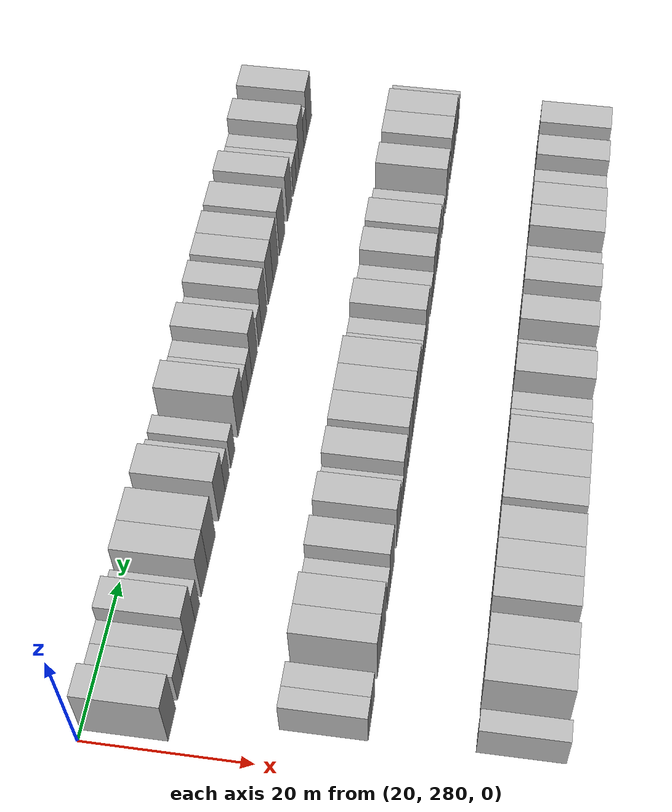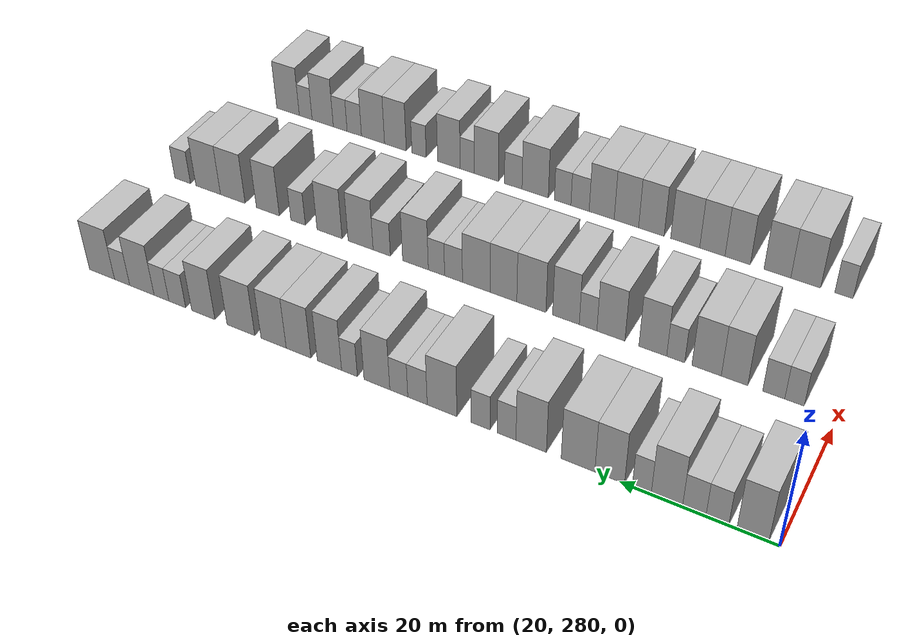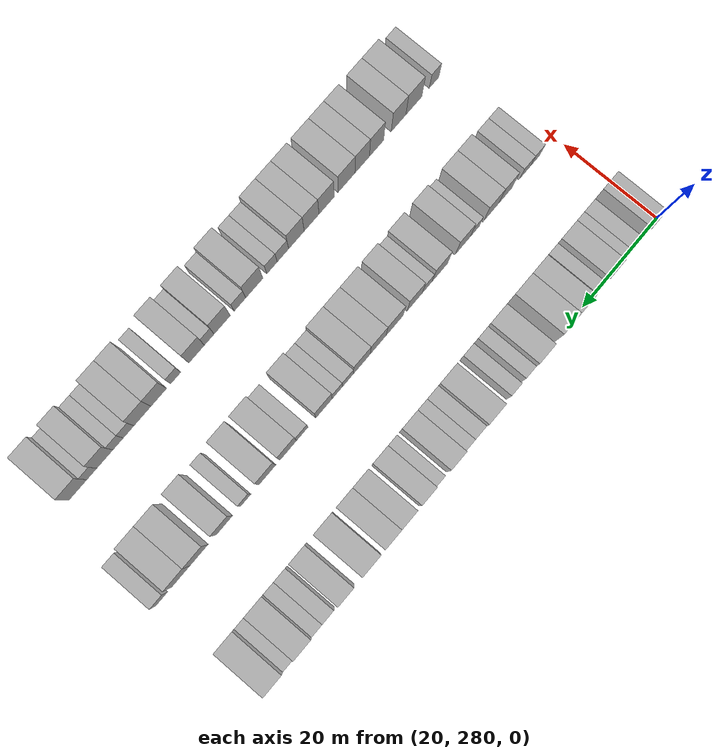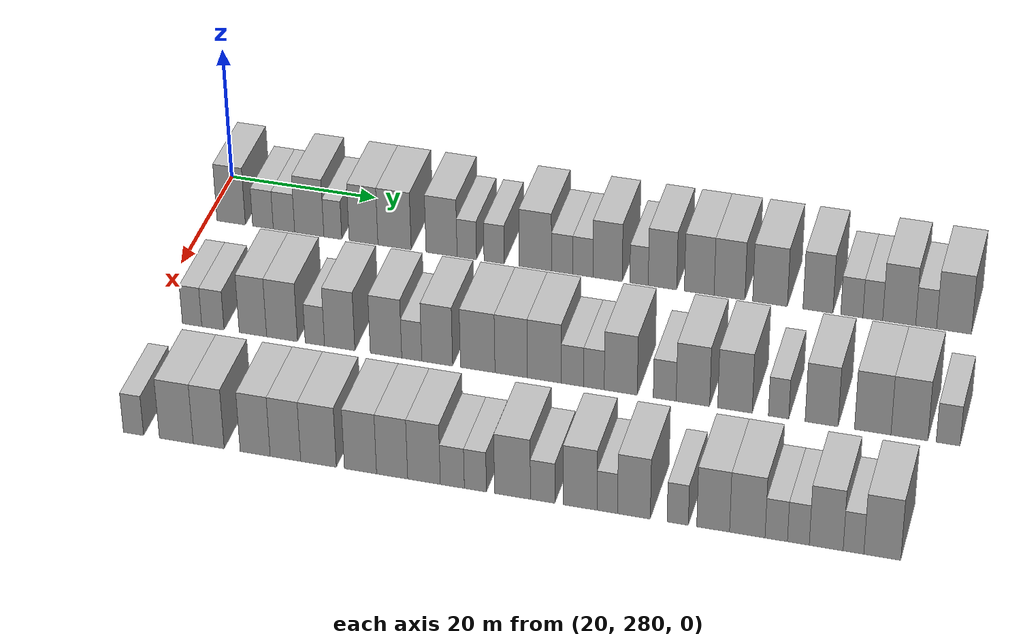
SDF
<sdf version="1.6">
 <world name="default">
  <model name="building_164">
   <static>1</static>
   <pose>25.0000 283.2691 0 0.000000 0.000000 0.000000</pose>
   <link name="link">
    <pose>0 0 4.50 0 0 0</pose>
    <collision name="collision"><geometry><box><size>10.0000 3.9026 9.0000</size></box></geometry></collision>
    <visual name="visual">
     <cast_shadows>0</cast_shadows>
     <geometry><box><size>10.0000 3.9026 9.0000</size></box></geometry>
     <material>
      <script>
       <uri>model://HANNAS_wall/materials/scripts</uri>
       <uri>model://HANNAS_wall/materials/textures</uri>
       <name>vrc/HANNAS_wall</name>
      </script>
     </material>
    </visual>
   </link>
  </model>
  <model name="building_165">
   <static>1</static>
   <pose>25.0000 287.6342 0 0.000000 0.000000 0.000000</pose>
   <link name="link">
    <pose>0 0 3.00 0 0 0</pose>
    <collision name="collision"><geometry><box><size>10.0000 2.8275 6.0000</size></box></geometry></collision>
    <visual name="visual">
     <cast_shadows>0</cast_shadows>
     <geometry><box><size>10.0000 2.8275 6.0000</size></box></geometry>
     <material>
      <script>
       <uri>model://HANNAS_wall/materials/scripts</uri>
       <uri>model://HANNAS_wall/materials/textures</uri>
       <name>vrc/HANNAS_wall</name>
      </script>
     </material>
    </visual>
   </link>
  </model>
  <model name="building_166">
   <static>1</static>
   <pose>25.0000 290.5154 0 0.000000 0.000000 0.000000</pose>
   <link name="link">
    <pose>0 0 3.00 0 0 0</pose>
    <collision name="collision"><geometry><box><size>10.0000 2.9350 6.0000</size></box></geometry></collision>
    <visual name="visual">
     <cast_shadows>0</cast_shadows>
     <geometry><box><size>10.0000 2.9350 6.0000</size></box></geometry>
     <material>
      <script>
       <uri>model://HANNAS_wall/materials/scripts</uri>
       <uri>model://HANNAS_wall/materials/textures</uri>
       <name>vrc/HANNAS_wall</name>
      </script>
     </material>
    </visual>
   </link>
  </model>
  <model name="building_167">
   <static>1</static>
   <pose>25.0000 293.9731 0 0.000000 0.000000 0.000000</pose>
   <link name="link">
    <pose>0 0 4.50 0 0 0</pose>
    <collision name="collision"><geometry><box><size>10.0000 3.9804 9.0000</size></box></geometry></collision>
    <visual name="visual">
     <cast_shadows>0</cast_shadows>
     <geometry><box><size>10.0000 3.9804 9.0000</size></box></geometry>
     <material>
      <script>
       <uri>model://HANNAS_wall/materials/scripts</uri>
       <uri>model://HANNAS_wall/materials/textures</uri>
       <name>vrc/HANNAS_wall</name>
      </script>
     </material>
    </visual>
   </link>
  </model>
  <model name="building_168">
   <static>1</static>
   <pose>25.0000 297.1837 0 0.000000 0.000000 0.000000</pose>
   <link name="link">
    <pose>0 0 3.00 0 0 0</pose>
    <collision name="collision"><geometry><box><size>10.0000 2.4409 6.0000</size></box></geometry></collision>
    <visual name="visual">
     <cast_shadows>0</cast_shadows>
     <geometry><box><size>10.0000 2.4409 6.0000</size></box></geometry>
     <material>
      <script>
       <uri>model://HANNAS_wall/materials/scripts</uri>
       <uri>model://HANNAS_wall/materials/textures</uri>
       <name>vrc/HANNAS_wall</name>
      </script>
     </material>
    </visual>
   </link>
  </model>
  <model name="building_169">
   <static>1</static>
   <pose>25.0000 301.3516 0 0.000000 0.000000 0.000000</pose>
   <link name="link">
    <pose>0 0 4.50 0 0 0</pose>
    <collision name="collision"><geometry><box><size>10.0000 3.8948 9.0000</size></box></geometry></collision>
    <visual name="visual">
     <cast_shadows>0</cast_shadows>
     <geometry><box><size>10.0000 3.8948 9.0000</size></box></geometry>
     <material>
      <script>
       <uri>model://HANNAS_wall/materials/scripts</uri>
       <uri>model://HANNAS_wall/materials/textures</uri>
       <name>vrc/HANNAS_wall</name>
      </script>
     </material>
    </visual>
   </link>
  </model>
  <model name="building_170">
   <static>1</static>
   <pose>25.0000 305.5456 0 0.000000 0.000000 0.000000</pose>
   <link name="link">
    <pose>0 0 4.50 0 0 0</pose>
    <collision name="collision"><geometry><box><size>10.0000 4.4932 9.0000</size></box></geometry></collision>
    <visual name="visual">
     <cast_shadows>0</cast_shadows>
     <geometry><box><size>10.0000 4.4932 9.0000</size></box></geometry>
     <material>
      <script>
       <uri>model://HANNAS_wall/materials/scripts</uri>
       <uri>model://HANNAS_wall/materials/textures</uri>
       <name>vrc/HANNAS_wall</name>
      </script>
     </material>
    </visual>
   </link>
  </model>
  <model name="building_171">
   <static>1</static>
   <pose>25.0000 311.8754 0 0.000000 0.000000 0.000000</pose>
   <link name="link">
    <pose>0 0 4.50 0 0 0</pose>
    <collision name="collision"><geometry><box><size>10.0000 4.1664 9.0000</size></box></geometry></collision>
    <visual name="visual">
     <cast_shadows>0</cast_shadows>
     <geometry><box><size>10.0000 4.1664 9.0000</size></box></geometry>
     <material>
      <script>
       <uri>model://HANNAS_wall/materials/scripts</uri>
       <uri>model://HANNAS_wall/materials/textures</uri>
       <name>vrc/HANNAS_wall</name>
      </script>
     </material>
    </visual>
   </link>
  </model>
  <model name="building_172">
   <static>1</static>
   <pose>25.0000 315.2566 0 0.000000 0.000000 0.000000</pose>
   <link name="link">
    <pose>0 0 3.00 0 0 0</pose>
    <collision name="collision"><geometry><box><size>10.0000 2.5960 6.0000</size></box></geometry></collision>
    <visual name="visual">
     <cast_shadows>0</cast_shadows>
     <geometry><box><size>10.0000 2.5960 6.0000</size></box></geometry>
     <material>
      <script>
       <uri>model://HANNAS_wall/materials/scripts</uri>
       <uri>model://HANNAS_wall/materials/textures</uri>
       <name>vrc/HANNAS_wall</name>
      </script>
     </material>
    </visual>
   </link>
  </model>
  <model name="building_173">
   <static>1</static>
   <pose>25.0000 318.8989 0 0.000000 0.000000 0.000000</pose>
   <link name="link">
    <pose>0 0 3.00 0 0 0</pose>
    <collision name="collision"><geometry><box><size>10.0000 2.6887 6.0000</size></box></geometry></collision>
    <visual name="visual">
     <cast_shadows>0</cast_shadows>
     <geometry><box><size>10.0000 2.6887 6.0000</size></box></geometry>
     <material>
      <script>
       <uri>model://HANNAS_wall/materials/scripts</uri>
       <uri>model://HANNAS_wall/materials/textures</uri>
       <name>vrc/HANNAS_wall</name>
      </script>
     </material>
    </visual>
   </link>
  </model>
  <model name="building_174">
   <static>1</static>
   <pose>25.0000 324.3795 0 0.000000 0.000000 0.000000</pose>
   <link name="link">
    <pose>0 0 4.50 0 0 0</pose>
    <collision name="collision"><geometry><box><size>10.0000 4.2726 9.0000</size></box></geometry></collision>
    <visual name="visual">
     <cast_shadows>0</cast_shadows>
     <geometry><box><size>10.0000 4.2726 9.0000</size></box></geometry>
     <material>
      <script>
       <uri>model://HANNAS_wall/materials/scripts</uri>
       <uri>model://HANNAS_wall/materials/textures</uri>
       <name>vrc/HANNAS_wall</name>
      </script>
     </material>
    </visual>
   </link>
  </model>
  <model name="building_175">
   <static>1</static>
   <pose>25.0000 327.9289 0 0.000000 0.000000 0.000000</pose>
   <link name="link">
    <pose>0 0 3.00 0 0 0</pose>
    <collision name="collision"><geometry><box><size>10.0000 2.8261 6.0000</size></box></geometry></collision>
    <visual name="visual">
     <cast_shadows>0</cast_shadows>
     <geometry><box><size>10.0000 2.8261 6.0000</size></box></geometry>
     <material>
      <script>
       <uri>model://HANNAS_wall/materials/scripts</uri>
       <uri>model://HANNAS_wall/materials/textures</uri>
       <name>vrc/HANNAS_wall</name>
      </script>
     </material>
    </visual>
   </link>
  </model>
  <model name="building_176">
   <static>1</static>
   <pose>25.0000 330.6680 0 0.000000 0.000000 0.000000</pose>
   <link name="link">
    <pose>0 0 3.00 0 0 0</pose>
    <collision name="collision"><geometry><box><size>10.0000 2.6521 6.0000</size></box></geometry></collision>
    <visual name="visual">
     <cast_shadows>0</cast_shadows>
     <geometry><box><size>10.0000 2.6521 6.0000</size></box></geometry>
     <material>
      <script>
       <uri>model://HANNAS_wall/materials/scripts</uri>
       <uri>model://HANNAS_wall/materials/textures</uri>
       <name>vrc/HANNAS_wall</name>
      </script>
     </material>
    </visual>
   </link>
  </model>
  <model name="building_177">
   <static>1</static>
   <pose>25.0000 333.9187 0 0.000000 0.000000 0.000000</pose>
   <link name="link">
    <pose>0 0 4.50 0 0 0</pose>
    <collision name="collision"><geometry><box><size>10.0000 3.8493 9.0000</size></box></geometry></collision>
    <visual name="visual">
     <cast_shadows>0</cast_shadows>
     <geometry><box><size>10.0000 3.8493 9.0000</size></box></geometry>
     <material>
      <script>
       <uri>model://HANNAS_wall/materials/scripts</uri>
       <uri>model://HANNAS_wall/materials/textures</uri>
       <name>vrc/HANNAS_wall</name>
      </script>
     </material>
    </visual>
   </link>
  </model>
  <model name="building_178">
   <static>1</static>
   <pose>25.0000 338.0436 0 0.000000 0.000000 0.000000</pose>
   <link name="link">
    <pose>0 0 3.00 0 0 0</pose>
    <collision name="collision"><geometry><box><size>10.0000 2.4005 6.0000</size></box></geometry></collision>
    <visual name="visual">
     <cast_shadows>0</cast_shadows>
     <geometry><box><size>10.0000 2.4005 6.0000</size></box></geometry>
     <material>
      <script>
       <uri>model://HANNAS_wall/materials/scripts</uri>
       <uri>model://HANNAS_wall/materials/textures</uri>
       <name>vrc/HANNAS_wall</name>
      </script>
     </material>
    </visual>
   </link>
  </model>
  <model name="building_179">
   <static>1</static>
   <pose>25.0000 341.1020 0 0.000000 0.000000 0.000000</pose>
   <link name="link">
    <pose>0 0 4.50 0 0 0</pose>
    <collision name="collision"><geometry><box><size>10.0000 3.7163 9.0000</size></box></geometry></collision>
    <visual name="visual">
     <cast_shadows>0</cast_shadows>
     <geometry><box><size>10.0000 3.7163 9.0000</size></box></geometry>
     <material>
      <script>
       <uri>model://HANNAS_wall/materials/scripts</uri>
       <uri>model://HANNAS_wall/materials/textures</uri>
       <name>vrc/HANNAS_wall</name>
      </script>
     </material>
    </visual>
   </link>
  </model>
  <model name="building_180">
   <static>1</static>
   <pose>25.0000 345.8897 0 0.000000 0.000000 0.000000</pose>
   <link name="link">
    <pose>0 0 4.50 0 0 0</pose>
    <collision name="collision"><geometry><box><size>10.0000 3.8592 9.0000</size></box></geometry></collision>
    <visual name="visual">
     <cast_shadows>0</cast_shadows>
     <geometry><box><size>10.0000 3.8592 9.0000</size></box></geometry>
     <material>
      <script>
       <uri>model://HANNAS_wall/materials/scripts</uri>
       <uri>model://HANNAS_wall/materials/textures</uri>
       <name>vrc/HANNAS_wall</name>
      </script>
     </material>
    </visual>
   </link>
  </model>
  <model name="building_181">
   <static>1</static>
   <pose>25.0000 349.8152 0 0.000000 0.000000 0.000000</pose>
   <link name="link">
    <pose>0 0 4.50 0 0 0</pose>
    <collision name="collision"><geometry><box><size>10.0000 3.9918 9.0000</size></box></geometry></collision>
    <visual name="visual">
     <cast_shadows>0</cast_shadows>
     <geometry><box><size>10.0000 3.9918 9.0000</size></box></geometry>
     <material>
      <script>
       <uri>model://HANNAS_wall/materials/scripts</uri>
       <uri>model://HANNAS_wall/materials/textures</uri>
       <name>vrc/HANNAS_wall</name>
      </script>
     </material>
    </visual>
   </link>
  </model>
  <model name="building_182">
   <static>1</static>
   <pose>25.0000 355.0511 0 0.000000 0.000000 0.000000</pose>
   <link name="link">
    <pose>0 0 4.50 0 0 0</pose>
    <collision name="collision"><geometry><box><size>10.0000 4.4800 9.0000</size></box></geometry></collision>
    <visual name="visual">
     <cast_shadows>0</cast_shadows>
     <geometry><box><size>10.0000 4.4800 9.0000</size></box></geometry>
     <material>
      <script>
       <uri>model://HANNAS_wall/materials/scripts</uri>
       <uri>model://HANNAS_wall/materials/textures</uri>
       <name>vrc/HANNAS_wall</name>
      </script>
     </material>
    </visual>
   </link>
  </model>
  <model name="building_183">
   <static>1</static>
   <pose>25.0000 361.2094 0 0.000000 0.000000 0.000000</pose>
   <link name="link">
    <pose>0 0 4.50 0 0 0</pose>
    <collision name="collision"><geometry><box><size>10.0000 3.8364 9.0000</size></box></geometry></collision>
    <visual name="visual">
     <cast_shadows>0</cast_shadows>
     <geometry><box><size>10.0000 3.8364 9.0000</size></box></geometry>
     <material>
      <script>
       <uri>model://HANNAS_wall/materials/scripts</uri>
       <uri>model://HANNAS_wall/materials/textures</uri>
       <name>vrc/HANNAS_wall</name>
      </script>
     </material>
    </visual>
   </link>
  </model>
  <model name="building_184">
   <static>1</static>
   <pose>25.0000 365.5385 0 0.000000 0.000000 0.000000</pose>
   <link name="link">
    <pose>0 0 3.00 0 0 0</pose>
    <collision name="collision"><geometry><box><size>10.0000 2.8219 6.0000</size></box></geometry></collision>
    <visual name="visual">
     <cast_shadows>0</cast_shadows>
     <geometry><box><size>10.0000 2.8219 6.0000</size></box></geometry>
     <material>
      <script>
       <uri>model://HANNAS_wall/materials/scripts</uri>
       <uri>model://HANNAS_wall/materials/textures</uri>
       <name>vrc/HANNAS_wall</name>
      </script>
     </material>
    </visual>
   </link>
  </model>
  <model name="building_185">
   <static>1</static>
   <pose>25.0000 368.2086 0 0.000000 0.000000 0.000000</pose>
   <link name="link">
    <pose>0 0 3.00 0 0 0</pose>
    <collision name="collision"><geometry><box><size>10.0000 2.5183 6.0000</size></box></geometry></collision>
    <visual name="visual">
     <cast_shadows>0</cast_shadows>
     <geometry><box><size>10.0000 2.5183 6.0000</size></box></geometry>
     <material>
      <script>
       <uri>model://HANNAS_wall/materials/scripts</uri>
       <uri>model://HANNAS_wall/materials/textures</uri>
       <name>vrc/HANNAS_wall</name>
      </script>
     </material>
    </visual>
   </link>
  </model>
  <model name="building_186">
   <static>1</static>
   <pose>25.0000 371.5582 0 0.000000 0.000000 0.000000</pose>
   <link name="link">
    <pose>0 0 4.50 0 0 0</pose>
    <collision name="collision"><geometry><box><size>10.0000 4.1809 9.0000</size></box></geometry></collision>
    <visual name="visual">
     <cast_shadows>0</cast_shadows>
     <geometry><box><size>10.0000 4.1809 9.0000</size></box></geometry>
     <material>
      <script>
       <uri>model://HANNAS_wall/materials/scripts</uri>
       <uri>model://HANNAS_wall/materials/textures</uri>
       <name>vrc/HANNAS_wall</name>
      </script>
     </material>
    </visual>
   </link>
  </model>
  <model name="building_187">
   <static>1</static>
   <pose>25.0000 374.9747 0 0.000000 0.000000 0.000000</pose>
   <link name="link">
    <pose>0 0 3.00 0 0 0</pose>
    <collision name="collision"><geometry><box><size>10.0000 2.6520 6.0000</size></box></geometry></collision>
    <visual name="visual">
     <cast_shadows>0</cast_shadows>
     <geometry><box><size>10.0000 2.6520 6.0000</size></box></geometry>
     <material>
      <script>
       <uri>model://HANNAS_wall/materials/scripts</uri>
       <uri>model://HANNAS_wall/materials/textures</uri>
       <name>vrc/HANNAS_wall</name>
      </script>
     </material>
    </visual>
   </link>
  </model>
  <model name="building_188">
   <static>1</static>
   <pose>25.0000 378.4992 0 0.000000 0.000000 0.000000</pose>
   <link name="link">
    <pose>0 0 4.50 0 0 0</pose>
    <collision name="collision"><geometry><box><size>10.0000 4.3971 9.0000</size></box></geometry></collision>
    <visual name="visual">
     <cast_shadows>0</cast_shadows>
     <geometry><box><size>10.0000 4.3971 9.0000</size></box></geometry>
     <material>
      <script>
       <uri>model://HANNAS_wall/materials/scripts</uri>
       <uri>model://HANNAS_wall/materials/textures</uri>
       <name>vrc/HANNAS_wall</name>
      </script>
     </material>
    </visual>
   </link>
  </model>
  <model name="building_357">
   <static>1</static>
   <pose>47.0000 285.6091 0 0.000000 0.000000 0.000000</pose>
   <link name="link">
    <pose>0 0 3.00 0 0 0</pose>
    <collision name="collision"><geometry><box><size>10.0000 2.5618 6.0000</size></box></geometry></collision>
    <visual name="visual">
     <cast_shadows>0</cast_shadows>
     <geometry><box><size>10.0000 2.5618 6.0000</size></box></geometry>
     <material>
      <script>
       <uri>model://HANNAS_wall/materials/scripts</uri>
       <uri>model://HANNAS_wall/materials/textures</uri>
       <name>vrc/HANNAS_wall</name>
      </script>
     </material>
    </visual>
   </link>
  </model>
  <model name="building_358">
   <static>1</static>
   <pose>47.0000 288.3603 0 0.000000 0.000000 0.000000</pose>
   <link name="link">
    <pose>0 0 3.00 0 0 0</pose>
    <collision name="collision"><geometry><box><size>10.0000 2.9406 6.0000</size></box></geometry></collision>
    <visual name="visual">
     <cast_shadows>0</cast_shadows>
     <geometry><box><size>10.0000 2.9406 6.0000</size></box></geometry>
     <material>
      <script>
       <uri>model://HANNAS_wall/materials/scripts</uri>
       <uri>model://HANNAS_wall/materials/textures</uri>
       <name>vrc/HANNAS_wall</name>
      </script>
     </material>
    </visual>
   </link>
  </model>
  <model name="building_359">
   <static>1</static>
   <pose>47.0000 293.6311 0 0.000000 0.000000 0.000000</pose>
   <link name="link">
    <pose>0 0 4.50 0 0 0</pose>
    <collision name="collision"><geometry><box><size>10.0000 3.6010 9.0000</size></box></geometry></collision>
    <visual name="visual">
     <cast_shadows>0</cast_shadows>
     <geometry><box><size>10.0000 3.6010 9.0000</size></box></geometry>
     <material>
      <script>
       <uri>model://HANNAS_wall/materials/scripts</uri>
       <uri>model://HANNAS_wall/materials/textures</uri>
       <name>vrc/HANNAS_wall</name>
      </script>
     </material>
    </visual>
   </link>
  </model>
  <model name="building_360">
   <static>1</static>
   <pose>47.0000 297.4551 0 0.000000 0.000000 0.000000</pose>
   <link name="link">
    <pose>0 0 4.50 0 0 0</pose>
    <collision name="collision"><geometry><box><size>10.0000 4.0470 9.0000</size></box></geometry></collision>
    <visual name="visual">
     <cast_shadows>0</cast_shadows>
     <geometry><box><size>10.0000 4.0470 9.0000</size></box></geometry>
     <material>
      <script>
       <uri>model://HANNAS_wall/materials/scripts</uri>
       <uri>model://HANNAS_wall/materials/textures</uri>
       <name>vrc/HANNAS_wall</name>
      </script>
     </material>
    </visual>
   </link>
  </model>
  <model name="building_361">
   <static>1</static>
   <pose>47.0000 301.7408 0 0.000000 0.000000 0.000000</pose>
   <link name="link">
    <pose>0 0 3.00 0 0 0</pose>
    <collision name="collision"><geometry><box><size>10.0000 2.5244 6.0000</size></box></geometry></collision>
    <visual name="visual">
     <cast_shadows>0</cast_shadows>
     <geometry><box><size>10.0000 2.5244 6.0000</size></box></geometry>
     <material>
      <script>
       <uri>model://HANNAS_wall/materials/scripts</uri>
       <uri>model://HANNAS_wall/materials/textures</uri>
       <name>vrc/HANNAS_wall</name>
      </script>
     </material>
    </visual>
   </link>
  </model>
  <model name="building_362">
   <static>1</static>
   <pose>47.0000 304.9739 0 0.000000 0.000000 0.000000</pose>
   <link name="link">
    <pose>0 0 4.50 0 0 0</pose>
    <collision name="collision"><geometry><box><size>10.0000 3.9418 9.0000</size></box></geometry></collision>
    <visual name="visual">
     <cast_shadows>0</cast_shadows>
     <geometry><box><size>10.0000 3.9418 9.0000</size></box></geometry>
     <material>
      <script>
       <uri>model://HANNAS_wall/materials/scripts</uri>
       <uri>model://HANNAS_wall/materials/textures</uri>
       <name>vrc/HANNAS_wall</name>
      </script>
     </material>
    </visual>
   </link>
  </model>
  <model name="building_363">
   <static>1</static>
   <pose>47.0000 310.9781 0 0.000000 0.000000 0.000000</pose>
   <link name="link">
    <pose>0 0 4.50 0 0 0</pose>
    <collision name="collision"><geometry><box><size>10.0000 4.0666 9.0000</size></box></geometry></collision>
    <visual name="visual">
     <cast_shadows>0</cast_shadows>
     <geometry><box><size>10.0000 4.0666 9.0000</size></box></geometry>
     <material>
      <script>
       <uri>model://HANNAS_wall/materials/scripts</uri>
       <uri>model://HANNAS_wall/materials/textures</uri>
       <name>vrc/HANNAS_wall</name>
      </script>
     </material>
    </visual>
   </link>
  </model>
  <model name="building_364">
   <static>1</static>
   <pose>47.0000 314.3029 0 0.000000 0.000000 0.000000</pose>
   <link name="link">
    <pose>0 0 3.00 0 0 0</pose>
    <collision name="collision"><geometry><box><size>10.0000 2.5829 6.0000</size></box></geometry></collision>
    <visual name="visual">
     <cast_shadows>0</cast_shadows>
     <geometry><box><size>10.0000 2.5829 6.0000</size></box></geometry>
     <material>
      <script>
       <uri>model://HANNAS_wall/materials/scripts</uri>
       <uri>model://HANNAS_wall/materials/textures</uri>
       <name>vrc/HANNAS_wall</name>
      </script>
     </material>
    </visual>
   </link>
  </model>
  <model name="building_365">
   <static>1</static>
   <pose>47.0000 317.5752 0 0.000000 0.000000 0.000000</pose>
   <link name="link">
    <pose>0 0 4.50 0 0 0</pose>
    <collision name="collision"><geometry><box><size>10.0000 3.9618 9.0000</size></box></geometry></collision>
    <visual name="visual">
     <cast_shadows>0</cast_shadows>
     <geometry><box><size>10.0000 3.9618 9.0000</size></box></geometry>
     <material>
      <script>
       <uri>model://HANNAS_wall/materials/scripts</uri>
       <uri>model://HANNAS_wall/materials/textures</uri>
       <name>vrc/HANNAS_wall</name>
      </script>
     </material>
    </visual>
   </link>
  </model>
  <model name="building_366">
   <static>1</static>
   <pose>47.0000 322.7609 0 0.000000 0.000000 0.000000</pose>
   <link name="link">
    <pose>0 0 4.50 0 0 0</pose>
    <collision name="collision"><geometry><box><size>10.0000 4.4095 9.0000</size></box></geometry></collision>
    <visual name="visual">
     <cast_shadows>0</cast_shadows>
     <geometry><box><size>10.0000 4.4095 9.0000</size></box></geometry>
     <material>
      <script>
       <uri>model://HANNAS_wall/materials/scripts</uri>
       <uri>model://HANNAS_wall/materials/textures</uri>
       <name>vrc/HANNAS_wall</name>
      </script>
     </material>
    </visual>
   </link>
  </model>
  <model name="building_367">
   <static>1</static>
   <pose>47.0000 327.0212 0 0.000000 0.000000 0.000000</pose>
   <link name="link">
    <pose>0 0 4.50 0 0 0</pose>
    <collision name="collision"><geometry><box><size>10.0000 4.1112 9.0000</size></box></geometry></collision>
    <visual name="visual">
     <cast_shadows>0</cast_shadows>
     <geometry><box><size>10.0000 4.1112 9.0000</size></box></geometry>
     <material>
      <script>
       <uri>model://HANNAS_wall/materials/scripts</uri>
       <uri>model://HANNAS_wall/materials/textures</uri>
       <name>vrc/HANNAS_wall</name>
      </script>
     </material>
    </visual>
   </link>
  </model>
  <model name="building_368">
   <static>1</static>
   <pose>47.0000 331.2294 0 0.000000 0.000000 0.000000</pose>
   <link name="link">
    <pose>0 0 4.50 0 0 0</pose>
    <collision name="collision"><geometry><box><size>10.0000 4.3052 9.0000</size></box></geometry></collision>
    <visual name="visual">
     <cast_shadows>0</cast_shadows>
     <geometry><box><size>10.0000 4.3052 9.0000</size></box></geometry>
     <material>
      <script>
       <uri>model://HANNAS_wall/materials/scripts</uri>
       <uri>model://HANNAS_wall/materials/textures</uri>
       <name>vrc/HANNAS_wall</name>
      </script>
     </material>
    </visual>
   </link>
  </model>
  <model name="building_369">
   <static>1</static>
   <pose>47.0000 334.7934 0 0.000000 0.000000 0.000000</pose>
   <link name="link">
    <pose>0 0 3.00 0 0 0</pose>
    <collision name="collision"><geometry><box><size>10.0000 2.8227 6.0000</size></box></geometry></collision>
    <visual name="visual">
     <cast_shadows>0</cast_shadows>
     <geometry><box><size>10.0000 2.8227 6.0000</size></box></geometry>
     <material>
      <script>
       <uri>model://HANNAS_wall/materials/scripts</uri>
       <uri>model://HANNAS_wall/materials/textures</uri>
       <name>vrc/HANNAS_wall</name>
      </script>
     </material>
    </visual>
   </link>
  </model>
  <model name="building_370">
   <static>1</static>
   <pose>47.0000 337.5000 0 0.000000 0.000000 0.000000</pose>
   <link name="link">
    <pose>0 0 3.00 0 0 0</pose>
    <collision name="collision"><geometry><box><size>10.0000 2.5905 6.0000</size></box></geometry></collision>
    <visual name="visual">
     <cast_shadows>0</cast_shadows>
     <geometry><box><size>10.0000 2.5905 6.0000</size></box></geometry>
     <material>
      <script>
       <uri>model://HANNAS_wall/materials/scripts</uri>
       <uri>model://HANNAS_wall/materials/textures</uri>
       <name>vrc/HANNAS_wall</name>
      </script>
     </material>
    </visual>
   </link>
  </model>
  <model name="building_371">
   <static>1</static>
   <pose>47.0000 340.8681 0 0.000000 0.000000 0.000000</pose>
   <link name="link">
    <pose>0 0 4.50 0 0 0</pose>
    <collision name="collision"><geometry><box><size>10.0000 4.1456 9.0000</size></box></geometry></collision>
    <visual name="visual">
     <cast_shadows>0</cast_shadows>
     <geometry><box><size>10.0000 4.1456 9.0000</size></box></geometry>
     <material>
      <script>
       <uri>model://HANNAS_wall/materials/scripts</uri>
       <uri>model://HANNAS_wall/materials/textures</uri>
       <name>vrc/HANNAS_wall</name>
      </script>
     </material>
    </visual>
   </link>
  </model>
  <model name="building_372">
   <static>1</static>
   <pose>47.0000 346.3682 0 0.000000 0.000000 0.000000</pose>
   <link name="link">
    <pose>0 0 3.00 0 0 0</pose>
    <collision name="collision"><geometry><box><size>10.0000 2.8547 6.0000</size></box></geometry></collision>
    <visual name="visual">
     <cast_shadows>0</cast_shadows>
     <geometry><box><size>10.0000 2.8547 6.0000</size></box></geometry>
     <material>
      <script>
       <uri>model://HANNAS_wall/materials/scripts</uri>
       <uri>model://HANNAS_wall/materials/textures</uri>
       <name>vrc/HANNAS_wall</name>
      </script>
     </material>
    </visual>
   </link>
  </model>
  <model name="building_373">
   <static>1</static>
   <pose>47.0000 349.8794 0 0.000000 0.000000 0.000000</pose>
   <link name="link">
    <pose>0 0 4.50 0 0 0</pose>
    <collision name="collision"><geometry><box><size>10.0000 4.1676 9.0000</size></box></geometry></collision>
    <visual name="visual">
     <cast_shadows>0</cast_shadows>
     <geometry><box><size>10.0000 4.1676 9.0000</size></box></geometry>
     <material>
      <script>
       <uri>model://HANNAS_wall/materials/scripts</uri>
       <uri>model://HANNAS_wall/materials/textures</uri>
       <name>vrc/HANNAS_wall</name>
      </script>
     </material>
    </visual>
   </link>
  </model>
  <model name="building_374">
   <static>1</static>
   <pose>47.0000 355.0971 0 0.000000 0.000000 0.000000</pose>
   <link name="link">
    <pose>0 0 4.50 0 0 0</pose>
    <collision name="collision"><geometry><box><size>10.0000 4.2678 9.0000</size></box></geometry></collision>
    <visual name="visual">
     <cast_shadows>0</cast_shadows>
     <geometry><box><size>10.0000 4.2678 9.0000</size></box></geometry>
     <material>
      <script>
       <uri>model://HANNAS_wall/materials/scripts</uri>
       <uri>model://HANNAS_wall/materials/textures</uri>
       <name>vrc/HANNAS_wall</name>
      </script>
     </material>
    </visual>
   </link>
  </model>
  <model name="building_375">
   <static>1</static>
   <pose>47.0000 360.4883 0 0.000000 0.000000 0.000000</pose>
   <link name="link">
    <pose>0 0 3.00 0 0 0</pose>
    <collision name="collision"><geometry><box><size>10.0000 2.5147 6.0000</size></box></geometry></collision>
    <visual name="visual">
     <cast_shadows>0</cast_shadows>
     <geometry><box><size>10.0000 2.5147 6.0000</size></box></geometry>
     <material>
      <script>
       <uri>model://HANNAS_wall/materials/scripts</uri>
       <uri>model://HANNAS_wall/materials/textures</uri>
       <name>vrc/HANNAS_wall</name>
      </script>
     </material>
    </visual>
   </link>
  </model>
  <model name="building_376">
   <static>1</static>
   <pose>47.0000 365.7655 0 0.000000 0.000000 0.000000</pose>
   <link name="link">
    <pose>0 0 4.50 0 0 0</pose>
    <collision name="collision"><geometry><box><size>10.0000 4.0397 9.0000</size></box></geometry></collision>
    <visual name="visual">
     <cast_shadows>0</cast_shadows>
     <geometry><box><size>10.0000 4.0397 9.0000</size></box></geometry>
     <material>
      <script>
       <uri>model://HANNAS_wall/materials/scripts</uri>
       <uri>model://HANNAS_wall/materials/textures</uri>
       <name>vrc/HANNAS_wall</name>
      </script>
     </material>
    </visual>
   </link>
  </model>
  <model name="building_377">
   <static>1</static>
   <pose>47.0000 372.0050 0 0.000000 0.000000 0.000000</pose>
   <link name="link">
    <pose>0 0 4.50 0 0 0</pose>
    <collision name="collision"><geometry><box><size>10.0000 4.4393 9.0000</size></box></geometry></collision>
    <visual name="visual">
     <cast_shadows>0</cast_shadows>
     <geometry><box><size>10.0000 4.4393 9.0000</size></box></geometry>
     <material>
      <script>
       <uri>model://HANNAS_wall/materials/scripts</uri>
       <uri>model://HANNAS_wall/materials/textures</uri>
       <name>vrc/HANNAS_wall</name>
      </script>
     </material>
    </visual>
   </link>
  </model>
  <model name="building_378">
   <static>1</static>
   <pose>47.0000 376.4641 0 0.000000 0.000000 0.000000</pose>
   <link name="link">
    <pose>0 0 4.50 0 0 0</pose>
    <collision name="collision"><geometry><box><size>10.0000 4.4789 9.0000</size></box></geometry></collision>
    <visual name="visual">
     <cast_shadows>0</cast_shadows>
     <geometry><box><size>10.0000 4.4789 9.0000</size></box></geometry>
     <material>
      <script>
       <uri>model://HANNAS_wall/materials/scripts</uri>
       <uri>model://HANNAS_wall/materials/textures</uri>
       <name>vrc/HANNAS_wall</name>
      </script>
     </material>
    </visual>
   </link>
  </model>
  <model name="building_379">
   <static>1</static>
   <pose>47.0000 381.1455 0 0.000000 0.000000 0.000000</pose>
   <link name="link">
    <pose>0 0 3.00 0 0 0</pose>
    <collision name="collision"><geometry><box><size>10.0000 2.8838 6.0000</size></box></geometry></collision>
    <visual name="visual">
     <cast_shadows>0</cast_shadows>
     <geometry><box><size>10.0000 2.8838 6.0000</size></box></geometry>
     <material>
      <script>
       <uri>model://HANNAS_wall/materials/scripts</uri>
       <uri>model://HANNAS_wall/materials/textures</uri>
       <name>vrc/HANNAS_wall</name>
      </script>
     </material>
    </visual>
   </link>
  </model>
  <model name="building_541">
   <static>1</static>
   <pose>69.0000 285.9232 0 0.000000 0.000000 0.000000</pose>
   <link name="link">
    <pose>0 0 3.00 0 0 0</pose>
    <collision name="collision"><geometry><box><size>10.0000 2.5739 6.0000</size></box></geometry></collision>
    <visual name="visual">
     <cast_shadows>0</cast_shadows>
     <geometry><box><size>10.0000 2.5739 6.0000</size></box></geometry>
     <material>
      <script>
       <uri>model://HANNAS_wall/materials/scripts</uri>
       <uri>model://HANNAS_wall/materials/textures</uri>
       <name>vrc/HANNAS_wall</name>
      </script>
     </material>
    </visual>
   </link>
  </model>
  <model name="building_542">
   <static>1</static>
   <pose>69.0000 291.3525 0 0.000000 0.000000 0.000000</pose>
   <link name="link">
    <pose>0 0 4.50 0 0 0</pose>
    <collision name="collision"><geometry><box><size>10.0000 4.2847 9.0000</size></box></geometry></collision>
    <visual name="visual">
     <cast_shadows>0</cast_shadows>
     <geometry><box><size>10.0000 4.2847 9.0000</size></box></geometry>
     <material>
      <script>
       <uri>model://HANNAS_wall/materials/scripts</uri>
       <uri>model://HANNAS_wall/materials/textures</uri>
       <name>vrc/HANNAS_wall</name>
      </script>
     </material>
    </visual>
   </link>
  </model>
  <model name="building_543">
   <static>1</static>
   <pose>69.0000 295.4483 0 0.000000 0.000000 0.000000</pose>
   <link name="link">
    <pose>0 0 4.50 0 0 0</pose>
    <collision name="collision"><geometry><box><size>10.0000 3.9069 9.0000</size></box></geometry></collision>
    <visual name="visual">
     <cast_shadows>0</cast_shadows>
     <geometry><box><size>10.0000 3.9069 9.0000</size></box></geometry>
     <material>
      <script>
       <uri>model://HANNAS_wall/materials/scripts</uri>
       <uri>model://HANNAS_wall/materials/textures</uri>
       <name>vrc/HANNAS_wall</name>
      </script>
     </material>
    </visual>
   </link>
  </model>
  <model name="building_544">
   <static>1</static>
   <pose>69.0000 301.2829 0 0.000000 0.000000 0.000000</pose>
   <link name="link">
    <pose>0 0 4.50 0 0 0</pose>
    <collision name="collision"><geometry><box><size>10.0000 3.7624 9.0000</size></box></geometry></collision>
    <visual name="visual">
     <cast_shadows>0</cast_shadows>
     <geometry><box><size>10.0000 3.7624 9.0000</size></box></geometry>
     <material>
      <script>
       <uri>model://HANNAS_wall/materials/scripts</uri>
       <uri>model://HANNAS_wall/materials/textures</uri>
       <name>vrc/HANNAS_wall</name>
      </script>
     </material>
    </visual>
   </link>
  </model>
  <model name="building_545">
   <static>1</static>
   <pose>69.0000 305.0726 0 0.000000 0.000000 0.000000</pose>
   <link name="link">
    <pose>0 0 4.50 0 0 0</pose>
    <collision name="collision"><geometry><box><size>10.0000 3.8170 9.0000</size></box></geometry></collision>
    <visual name="visual">
     <cast_shadows>0</cast_shadows>
     <geometry><box><size>10.0000 3.8170 9.0000</size></box></geometry>
     <material>
      <script>
       <uri>model://HANNAS_wall/materials/scripts</uri>
       <uri>model://HANNAS_wall/materials/textures</uri>
       <name>vrc/HANNAS_wall</name>
      </script>
     </material>
    </visual>
   </link>
  </model>
  <model name="building_546">
   <static>1</static>
   <pose>69.0000 309.1991 0 0.000000 0.000000 0.000000</pose>
   <link name="link">
    <pose>0 0 4.50 0 0 0</pose>
    <collision name="collision"><geometry><box><size>10.0000 4.4358 9.0000</size></box></geometry></collision>
    <visual name="visual">
     <cast_shadows>0</cast_shadows>
     <geometry><box><size>10.0000 4.4358 9.0000</size></box></geometry>
     <material>
      <script>
       <uri>model://HANNAS_wall/materials/scripts</uri>
       <uri>model://HANNAS_wall/materials/textures</uri>
       <name>vrc/HANNAS_wall</name>
      </script>
     </material>
    </visual>
   </link>
  </model>
  <model name="building_547">
   <static>1</static>
   <pose>69.0000 314.4036 0 0.000000 0.000000 0.000000</pose>
   <link name="link">
    <pose>0 0 4.50 0 0 0</pose>
    <collision name="collision"><geometry><box><size>10.0000 3.9733 9.0000</size></box></geometry></collision>
    <visual name="visual">
     <cast_shadows>0</cast_shadows>
     <geometry><box><size>10.0000 3.9733 9.0000</size></box></geometry>
     <material>
      <script>
       <uri>model://HANNAS_wall/materials/scripts</uri>
       <uri>model://HANNAS_wall/materials/textures</uri>
       <name>vrc/HANNAS_wall</name>
      </script>
     </material>
    </visual>
   </link>
  </model>
  <model name="building_548">
   <static>1</static>
   <pose>69.0000 318.3116 0 0.000000 0.000000 0.000000</pose>
   <link name="link">
    <pose>0 0 4.50 0 0 0</pose>
    <collision name="collision"><geometry><box><size>10.0000 3.8427 9.0000</size></box></geometry></collision>
    <visual name="visual">
     <cast_shadows>0</cast_shadows>
     <geometry><box><size>10.0000 3.8427 9.0000</size></box></geometry>
     <material>
      <script>
       <uri>model://HANNAS_wall/materials/scripts</uri>
       <uri>model://HANNAS_wall/materials/textures</uri>
       <name>vrc/HANNAS_wall</name>
      </script>
     </material>
    </visual>
   </link>
  </model>
  <model name="building_549">
   <static>1</static>
   <pose>69.0000 322.2350 0 0.000000 0.000000 0.000000</pose>
   <link name="link">
    <pose>0 0 4.50 0 0 0</pose>
    <collision name="collision"><geometry><box><size>10.0000 4.0041 9.0000</size></box></geometry></collision>
    <visual name="visual">
     <cast_shadows>0</cast_shadows>
     <geometry><box><size>10.0000 4.0041 9.0000</size></box></geometry>
     <material>
      <script>
       <uri>model://HANNAS_wall/materials/scripts</uri>
       <uri>model://HANNAS_wall/materials/textures</uri>
       <name>vrc/HANNAS_wall</name>
      </script>
     </material>
    </visual>
   </link>
  </model>
  <model name="building_550">
   <static>1</static>
   <pose>69.0000 325.7071 0 0.000000 0.000000 0.000000</pose>
   <link name="link">
    <pose>0 0 3.00 0 0 0</pose>
    <collision name="collision"><geometry><box><size>10.0000 2.9400 6.0000</size></box></geometry></collision>
    <visual name="visual">
     <cast_shadows>0</cast_shadows>
     <geometry><box><size>10.0000 2.9400 6.0000</size></box></geometry>
     <material>
      <script>
       <uri>model://HANNAS_wall/materials/scripts</uri>
       <uri>model://HANNAS_wall/materials/textures</uri>
       <name>vrc/HANNAS_wall</name>
      </script>
     </material>
    </visual>
   </link>
  </model>
  <model name="building_551">
   <static>1</static>
   <pose>69.0000 328.5225 0 0.000000 0.000000 0.000000</pose>
   <link name="link">
    <pose>0 0 3.00 0 0 0</pose>
    <collision name="collision"><geometry><box><size>10.0000 2.6907 6.0000</size></box></geometry></collision>
    <visual name="visual">
     <cast_shadows>0</cast_shadows>
     <geometry><box><size>10.0000 2.6907 6.0000</size></box></geometry>
     <material>
      <script>
       <uri>model://HANNAS_wall/materials/scripts</uri>
       <uri>model://HANNAS_wall/materials/textures</uri>
       <name>vrc/HANNAS_wall</name>
      </script>
     </material>
    </visual>
   </link>
  </model>
  <model name="building_552">
   <static>1</static>
   <pose>69.0000 333.0431 0 0.000000 0.000000 0.000000</pose>
   <link name="link">
    <pose>0 0 4.50 0 0 0</pose>
    <collision name="collision"><geometry><box><size>10.0000 4.3505 9.0000</size></box></geometry></collision>
    <visual name="visual">
     <cast_shadows>0</cast_shadows>
     <geometry><box><size>10.0000 4.3505 9.0000</size></box></geometry>
     <material>
      <script>
       <uri>model://HANNAS_wall/materials/scripts</uri>
       <uri>model://HANNAS_wall/materials/textures</uri>
       <name>vrc/HANNAS_wall</name>
      </script>
     </material>
    </visual>
   </link>
  </model>
  <model name="building_553">
   <static>1</static>
   <pose>69.0000 336.6901 0 0.000000 0.000000 0.000000</pose>
   <link name="link">
    <pose>0 0 3.00 0 0 0</pose>
    <collision name="collision"><geometry><box><size>10.0000 2.9434 6.0000</size></box></geometry></collision>
    <visual name="visual">
     <cast_shadows>0</cast_shadows>
     <geometry><box><size>10.0000 2.9434 6.0000</size></box></geometry>
     <material>
      <script>
       <uri>model://HANNAS_wall/materials/scripts</uri>
       <uri>model://HANNAS_wall/materials/textures</uri>
       <name>vrc/HANNAS_wall</name>
      </script>
     </material>
    </visual>
   </link>
  </model>
  <model name="building_554">
   <static>1</static>
   <pose>69.0000 341.2045 0 0.000000 0.000000 0.000000</pose>
   <link name="link">
    <pose>0 0 4.50 0 0 0</pose>
    <collision name="collision"><geometry><box><size>10.0000 4.0854 9.0000</size></box></geometry></collision>
    <visual name="visual">
     <cast_shadows>0</cast_shadows>
     <geometry><box><size>10.0000 4.0854 9.0000</size></box></geometry>
     <material>
      <script>
       <uri>model://HANNAS_wall/materials/scripts</uri>
       <uri>model://HANNAS_wall/materials/textures</uri>
       <name>vrc/HANNAS_wall</name>
      </script>
     </material>
    </visual>
   </link>
  </model>
  <model name="building_555">
   <static>1</static>
   <pose>69.0000 344.4740 0 0.000000 0.000000 0.000000</pose>
   <link name="link">
    <pose>0 0 3.00 0 0 0</pose>
    <collision name="collision"><geometry><box><size>10.0000 2.4536 6.0000</size></box></geometry></collision>
    <visual name="visual">
     <cast_shadows>0</cast_shadows>
     <geometry><box><size>10.0000 2.4536 6.0000</size></box></geometry>
     <material>
      <script>
       <uri>model://HANNAS_wall/materials/scripts</uri>
       <uri>model://HANNAS_wall/materials/textures</uri>
       <name>vrc/HANNAS_wall</name>
      </script>
     </material>
    </visual>
   </link>
  </model>
  <model name="building_556">
   <static>1</static>
   <pose>69.0000 347.6618 0 0.000000 0.000000 0.000000</pose>
   <link name="link">
    <pose>0 0 4.50 0 0 0</pose>
    <collision name="collision"><geometry><box><size>10.0000 3.9221 9.0000</size></box></geometry></collision>
    <visual name="visual">
     <cast_shadows>0</cast_shadows>
     <geometry><box><size>10.0000 3.9221 9.0000</size></box></geometry>
     <material>
      <script>
       <uri>model://HANNAS_wall/materials/scripts</uri>
       <uri>model://HANNAS_wall/materials/textures</uri>
       <name>vrc/HANNAS_wall</name>
      </script>
     </material>
    </visual>
   </link>
  </model>
  <model name="building_557">
   <static>1</static>
   <pose>69.0000 352.8868 0 0.000000 0.000000 0.000000</pose>
   <link name="link">
    <pose>0 0 3.00 0 0 0</pose>
    <collision name="collision"><geometry><box><size>10.0000 2.5279 6.0000</size></box></geometry></collision>
    <visual name="visual">
     <cast_shadows>0</cast_shadows>
     <geometry><box><size>10.0000 2.5279 6.0000</size></box></geometry>
     <material>
      <script>
       <uri>model://HANNAS_wall/materials/scripts</uri>
       <uri>model://HANNAS_wall/materials/textures</uri>
       <name>vrc/HANNAS_wall</name>
      </script>
     </material>
    </visual>
   </link>
  </model>
  <model name="building_558">
   <static>1</static>
   <pose>69.0000 357.0947 0 0.000000 0.000000 0.000000</pose>
   <link name="link">
    <pose>0 0 4.50 0 0 0</pose>
    <collision name="collision"><geometry><box><size>10.0000 3.8879 9.0000</size></box></geometry></collision>
    <visual name="visual">
     <cast_shadows>0</cast_shadows>
     <geometry><box><size>10.0000 3.8879 9.0000</size></box></geometry>
     <material>
      <script>
       <uri>model://HANNAS_wall/materials/scripts</uri>
       <uri>model://HANNAS_wall/materials/textures</uri>
       <name>vrc/HANNAS_wall</name>
      </script>
     </material>
    </visual>
   </link>
  </model>
  <model name="building_559">
   <static>1</static>
   <pose>69.0000 361.1309 0 0.000000 0.000000 0.000000</pose>
   <link name="link">
    <pose>0 0 4.50 0 0 0</pose>
    <collision name="collision"><geometry><box><size>10.0000 4.1846 9.0000</size></box></geometry></collision>
    <visual name="visual">
     <cast_shadows>0</cast_shadows>
     <geometry><box><size>10.0000 4.1846 9.0000</size></box></geometry>
     <material>
      <script>
       <uri>model://HANNAS_wall/materials/scripts</uri>
       <uri>model://HANNAS_wall/materials/textures</uri>
       <name>vrc/HANNAS_wall</name>
      </script>
     </material>
    </visual>
   </link>
  </model>
  <model name="building_560">
   <static>1</static>
   <pose>69.0000 364.5388 0 0.000000 0.000000 0.000000</pose>
   <link name="link">
    <pose>0 0 3.00 0 0 0</pose>
    <collision name="collision"><geometry><box><size>10.0000 2.6311 6.0000</size></box></geometry></collision>
    <visual name="visual">
     <cast_shadows>0</cast_shadows>
     <geometry><box><size>10.0000 2.6311 6.0000</size></box></geometry>
     <material>
      <script>
       <uri>model://HANNAS_wall/materials/scripts</uri>
       <uri>model://HANNAS_wall/materials/textures</uri>
       <name>vrc/HANNAS_wall</name>
      </script>
     </material>
    </visual>
   </link>
  </model>
  <model name="building_561">
   <static>1</static>
   <pose>69.0000 367.1324 0 0.000000 0.000000 0.000000</pose>
   <link name="link">
    <pose>0 0 3.00 0 0 0</pose>
    <collision name="collision"><geometry><box><size>10.0000 2.5561 6.0000</size></box></geometry></collision>
    <visual name="visual">
     <cast_shadows>0</cast_shadows>
     <geometry><box><size>10.0000 2.5561 6.0000</size></box></geometry>
     <material>
      <script>
       <uri>model://HANNAS_wall/materials/scripts</uri>
       <uri>model://HANNAS_wall/materials/textures</uri>
       <name>vrc/HANNAS_wall</name>
      </script>
     </material>
    </visual>
   </link>
  </model>
  <model name="building_562">
   <static>1</static>
   <pose>69.0000 370.3896 0 0.000000 0.000000 0.000000</pose>
   <link name="link">
    <pose>0 0 4.50 0 0 0</pose>
    <collision name="collision"><geometry><box><size>10.0000 3.9584 9.0000</size></box></geometry></collision>
    <visual name="visual">
     <cast_shadows>0</cast_shadows>
     <geometry><box><size>10.0000 3.9584 9.0000</size></box></geometry>
     <material>
      <script>
       <uri>model://HANNAS_wall/materials/scripts</uri>
       <uri>model://HANNAS_wall/materials/textures</uri>
       <name>vrc/HANNAS_wall</name>
      </script>
     </material>
    </visual>
   </link>
  </model>
  <model name="building_563">
   <static>1</static>
   <pose>69.0000 373.5733 0 0.000000 0.000000 0.000000</pose>
   <link name="link">
    <pose>0 0 3.00 0 0 0</pose>
    <collision name="collision"><geometry><box><size>10.0000 2.4089 6.0000</size></box></geometry></collision>
    <visual name="visual">
     <cast_shadows>0</cast_shadows>
     <geometry><box><size>10.0000 2.4089 6.0000</size></box></geometry>
     <material>
      <script>
       <uri>model://HANNAS_wall/materials/scripts</uri>
       <uri>model://HANNAS_wall/materials/textures</uri>
       <name>vrc/HANNAS_wall</name>
      </script>
     </material>
    </visual>
   </link>
  </model>
  <model name="building_564">
   <static>1</static>
   <pose>69.0000 376.9236 0 0.000000 0.000000 0.000000</pose>
   <link name="link">
    <pose>0 0 4.50 0 0 0</pose>
    <collision name="collision"><geometry><box><size>10.0000 4.2917 9.0000</size></box></geometry></collision>
    <visual name="visual">
     <cast_shadows>0</cast_shadows>
     <geometry><box><size>10.0000 4.2917 9.0000</size></box></geometry>
     <material>
      <script>
       <uri>model://HANNAS_wall/materials/scripts</uri>
       <uri>model://HANNAS_wall/materials/textures</uri>
       <name>vrc/HANNAS_wall</name>
      </script>
     </material>
    </visual>
   </link>
  </model>
 </world>
</sdf>
